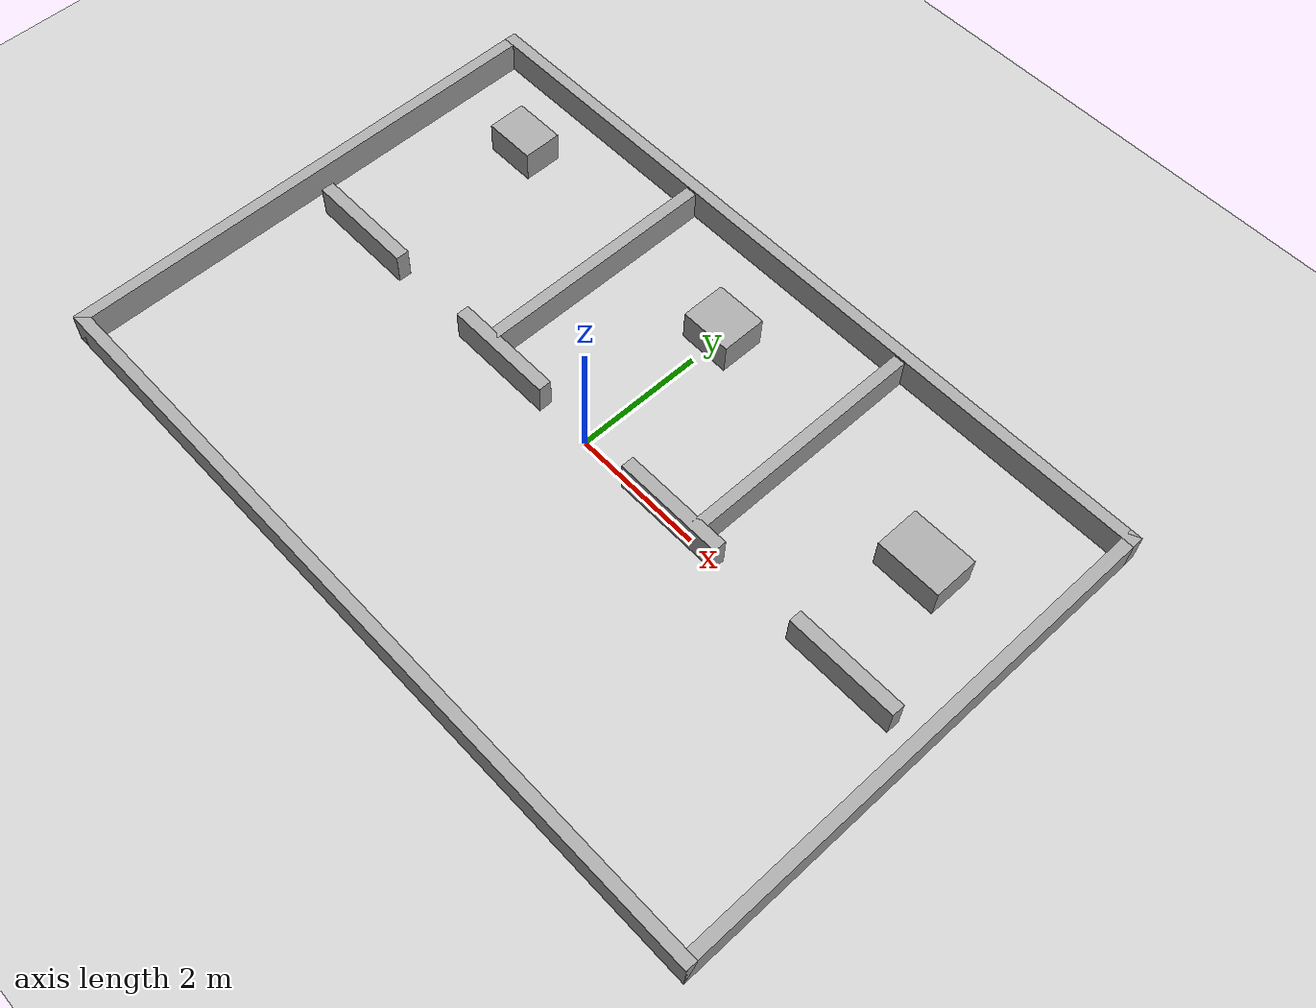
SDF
<?xml version='1.0'?>
<sdf version='1.7'>
  <world name='corridor_rooms'>
    <physics name='1ms' type='ignored'>
      <max_step_size>0.001</max_step_size>
      <real_time_factor>1.0</real_time_factor>
    </physics>
    <plugin filename='gz-sim-physics-system' name='gz::sim::systems::Physics'/>
    <plugin filename='gz-sim-user-commands-system' name='gz::sim::systems::UserCommands'/>
    <plugin filename='gz-sim-scene-broadcaster-system' name='gz::sim::systems::SceneBroadcaster'/>
    <light type='directional' name='sun'>
      <cast_shadows>true</cast_shadows>
      <pose>0 0 10 0 0 0</pose>
      <diffuse>0.8 0.8 0.8 1</diffuse>
      <specular>0.2 0.2 0.2 1</specular>
      <direction>-0.5 0.1 -0.9</direction>
    </light>
    <model name='ground_plane'>
      <static>true</static>
      <link name='link'>
        <collision name='collision'><geometry><plane><normal>0 0 1</normal><size>30 30</size></plane></geometry></collision>
        <visual name='visual'><geometry><plane><normal>0 0 1</normal><size>30 30</size></plane></geometry><material><ambient>0.8 0.8 0.8 1</ambient><diffuse>0.8 0.8 0.8 1</diffuse></material></visual>
      </link>
    </model>

    <model name='wall_0'>
      <static>true</static>
      <pose>0.000 -3.910 0.250 0 0 0</pose>
      <link name='link'>
        <collision name='collision'>
          <geometry><box><size>12.000 0.180 0.500</size></box></geometry>
        </collision>
        <visual name='visual'>
          <geometry><box><size>12.000 0.180 0.500</size></box></geometry>
          <material><ambient>0.65 0.65 0.65 1</ambient><diffuse>0.65 0.65 0.65 1</diffuse></material>
        </visual>
      </link>
    </model>

    <model name='wall_1'>
      <static>true</static>
      <pose>0.000 3.910 0.250 0 0 0</pose>
      <link name='link'>
        <collision name='collision'>
          <geometry><box><size>12.000 0.180 0.500</size></box></geometry>
        </collision>
        <visual name='visual'>
          <geometry><box><size>12.000 0.180 0.500</size></box></geometry>
          <material><ambient>0.65 0.65 0.65 1</ambient><diffuse>0.65 0.65 0.65 1</diffuse></material>
        </visual>
      </link>
    </model>

    <model name='wall_2'>
      <static>true</static>
      <pose>-5.910 0.000 0.250 0 0 0</pose>
      <link name='link'>
        <collision name='collision'>
          <geometry><box><size>0.180 8.000 0.500</size></box></geometry>
        </collision>
        <visual name='visual'>
          <geometry><box><size>0.180 8.000 0.500</size></box></geometry>
          <material><ambient>0.65 0.65 0.65 1</ambient><diffuse>0.65 0.65 0.65 1</diffuse></material>
        </visual>
      </link>
    </model>

    <model name='wall_3'>
      <static>true</static>
      <pose>5.910 0.000 0.250 0 0 0</pose>
      <link name='link'>
        <collision name='collision'>
          <geometry><box><size>0.180 8.000 0.500</size></box></geometry>
        </collision>
        <visual name='visual'>
          <geometry><box><size>0.180 8.000 0.500</size></box></geometry>
          <material><ambient>0.65 0.65 0.65 1</ambient><diffuse>0.65 0.65 0.65 1</diffuse></material>
        </visual>
      </link>
    </model>

    <model name='wall_4'>
      <static>true</static>
      <pose>-4.650 0.000 0.250 0 0 0</pose>
      <link name='link'>
        <collision name='collision'>
          <geometry><box><size>1.700 0.200 0.500</size></box></geometry>
        </collision>
        <visual name='visual'>
          <geometry><box><size>1.700 0.200 0.500</size></box></geometry>
          <material><ambient>0.65 0.65 0.65 1</ambient><diffuse>0.65 0.65 0.65 1</diffuse></material>
        </visual>
      </link>
    </model>

    <model name='wall_5'>
      <static>true</static>
      <pose>-1.650 0.000 0.250 0 0 0</pose>
      <link name='link'>
        <collision name='collision'>
          <geometry><box><size>1.700 0.200 0.500</size></box></geometry>
        </collision>
        <visual name='visual'>
          <geometry><box><size>1.700 0.200 0.500</size></box></geometry>
          <material><ambient>0.65 0.65 0.65 1</ambient><diffuse>0.65 0.65 0.65 1</diffuse></material>
        </visual>
      </link>
    </model>

    <model name='wall_6'>
      <static>true</static>
      <pose>1.650 0.000 0.250 0 0 0</pose>
      <link name='link'>
        <collision name='collision'>
          <geometry><box><size>1.700 0.200 0.500</size></box></geometry>
        </collision>
        <visual name='visual'>
          <geometry><box><size>1.700 0.200 0.500</size></box></geometry>
          <material><ambient>0.65 0.65 0.65 1</ambient><diffuse>0.65 0.65 0.65 1</diffuse></material>
        </visual>
      </link>
    </model>

    <model name='wall_7'>
      <static>true</static>
      <pose>4.650 0.000 0.250 0 0 0</pose>
      <link name='link'>
        <collision name='collision'>
          <geometry><box><size>1.700 0.200 0.500</size></box></geometry>
        </collision>
        <visual name='visual'>
          <geometry><box><size>1.700 0.200 0.500</size></box></geometry>
          <material><ambient>0.65 0.65 0.65 1</ambient><diffuse>0.65 0.65 0.65 1</diffuse></material>
        </visual>
      </link>
    </model>

    <model name='wall_8'>
      <static>true</static>
      <pose>-1.910 1.900 0.250 0 0 0</pose>
      <link name='link'>
        <collision name='collision'>
          <geometry><box><size>0.180 3.800 0.500</size></box></geometry>
        </collision>
        <visual name='visual'>
          <geometry><box><size>0.180 3.800 0.500</size></box></geometry>
          <material><ambient>0.65 0.65 0.65 1</ambient><diffuse>0.65 0.65 0.65 1</diffuse></material>
        </visual>
      </link>
    </model>

    <model name='wall_9'>
      <static>true</static>
      <pose>2.090 1.900 0.250 0 0 0</pose>
      <link name='link'>
        <collision name='collision'>
          <geometry><box><size>0.180 3.800 0.500</size></box></geometry>
        </collision>
        <visual name='visual'>
          <geometry><box><size>0.180 3.800 0.500</size></box></geometry>
          <material><ambient>0.65 0.65 0.65 1</ambient><diffuse>0.65 0.65 0.65 1</diffuse></material>
        </visual>
      </link>
    </model>

    <model name='wall_10'>
      <static>true</static>
      <pose>-4.400 2.800 0.250 0 0 0</pose>
      <link name='link'>
        <collision name='collision'>
          <geometry><box><size>0.800 0.600 0.500</size></box></geometry>
        </collision>
        <visual name='visual'>
          <geometry><box><size>0.800 0.600 0.500</size></box></geometry>
          <material><ambient>0.65 0.65 0.65 1</ambient><diffuse>0.65 0.65 0.65 1</diffuse></material>
        </visual>
      </link>
    </model>

    <model name='wall_11'>
      <static>true</static>
      <pose>0.000 2.550 0.250 0 0 0</pose>
      <link name='link'>
        <collision name='collision'>
          <geometry><box><size>0.800 0.700 0.500</size></box></geometry>
        </collision>
        <visual name='visual'>
          <geometry><box><size>0.800 0.700 0.500</size></box></geometry>
          <material><ambient>0.65 0.65 0.65 1</ambient><diffuse>0.65 0.65 0.65 1</diffuse></material>
        </visual>
      </link>
    </model>

    <model name='wall_12'>
      <static>true</static>
      <pose>4.300 1.850 0.250 0 0 0</pose>
      <link name='link'>
        <collision name='collision'>
          <geometry><box><size>1.000 0.700 0.500</size></box></geometry>
        </collision>
        <visual name='visual'>
          <geometry><box><size>1.000 0.700 0.500</size></box></geometry>
          <material><ambient>0.65 0.65 0.65 1</ambient><diffuse>0.65 0.65 0.65 1</diffuse></material>
        </visual>
      </link>
    </model>
  </world>
</sdf>
